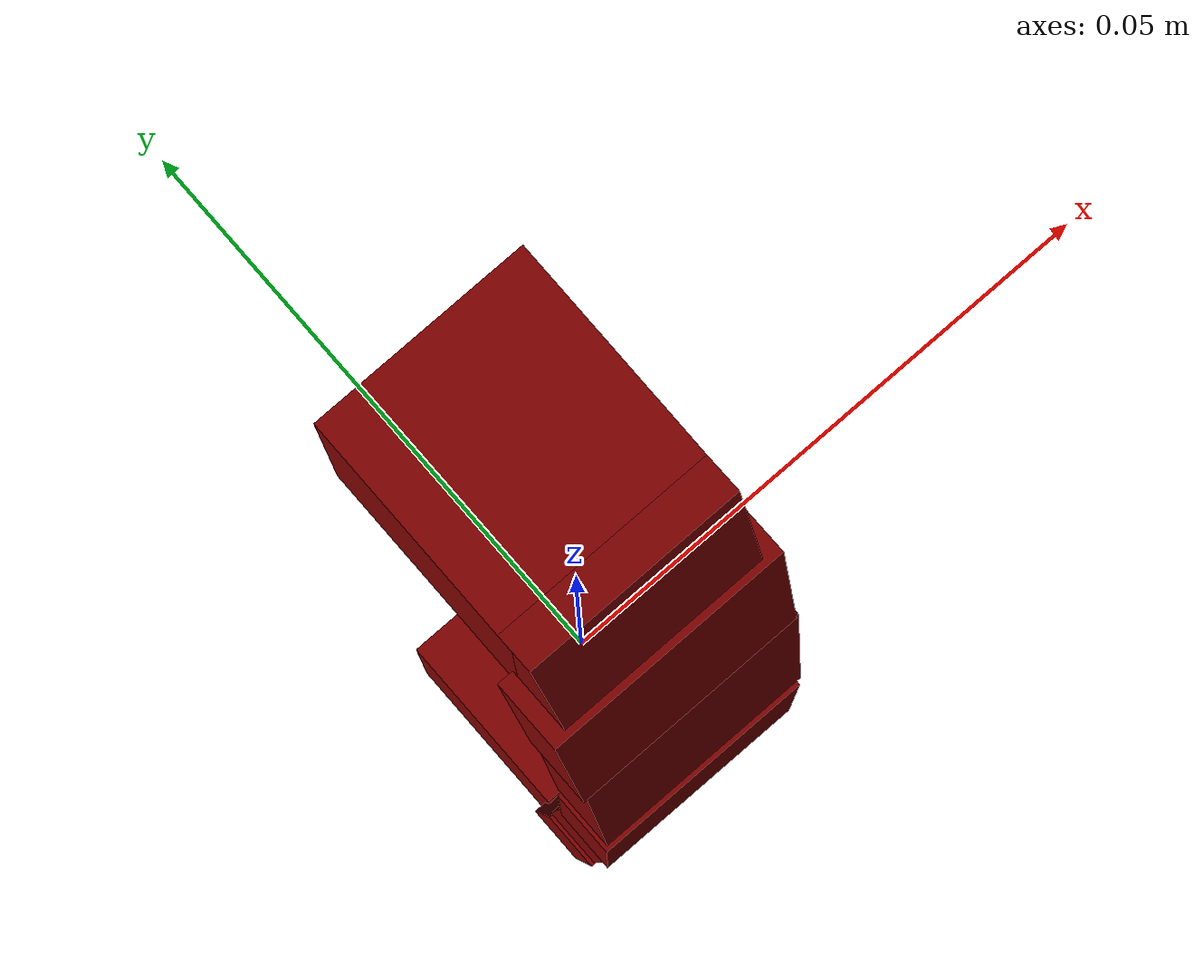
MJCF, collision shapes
<?xml version='1.0' encoding='UTF-8'?>
<mujoco model="model">
  <option timestep="0.002" gravity="0.0 0.0 -9.81"/>
  <compiler angle="radian"/>
  <asset>
    <mesh file="visuals/CabinetHandle031.obj" name="CabinetHandle031_vis"/>
    <texture file="visuals/T_BC001.png" name="tex" type="2d"/>
    <material name="mat" rgba="1 1 1 1.0" texture="tex" shininess="-0.9999998807907104" specular="0.3103448502657381"/>
  </asset>
  <default>
    <default class="visual">
      <geom conaffinity="0" contype="0" group="1" type="mesh"/>
    </default>
    <default class="collision">
      <geom group="0" rgba="0.5 0 0 0.5" density="1.0" solref="0.004 1" solimp="0.998 0.998 0.001"/>
    </default>
    <default class="spawn">
      <geom group="0" rgba="1 1 1 0.5" contype="0" conaffinity="0"/>
      <site group="0" rgba="1 1 1 0.5"/>
    </default>
    <default class="region">
      <geom group="1" conaffinity="0" contype="0" rgba="0 1 0 0" mass="0"/>
    </default>
  </default>
  <worldbody>
    <body>
      <body name="object">
        <geom mesh="CabinetHandle031_vis" type="mesh" solimp="0.998 0.998 0.001" solref="0.001 1" friction="0.95 0.3 0.1" class="visual" material="mat"/>
        <geom type="box" pos="0.0 0.004903578665107489 -0.07580382376909256" size="0.008262159302830696 0.009052232839167118 0.012539614923298359" quat="1.0 0.0 0.0 0.0" class="collision"/>
        <geom type="box" pos="3.487616777420044e-05 0.004903124179691076 0.0759149044752121" size="0.008262149058282375 0.009052222594618797 0.012587164528667927" quat="1.0 0.0 0.0 0.0" class="collision"/>
        <geom type="box" pos="3.487616777420044e-05 -0.011143438518047333 7.753819227218628e-05" size="0.009538620710372925 0.002793191699311137 0.012539575807750225" quat="1.0 0.0 0.0 0.0" class="collision"/>
        <geom type="box" pos="0.0003676544292829931 -0.00979655608534813 0.029630199074745178" size="0.009538610465824604 0.0027931882068514824 0.016835320740938187" quat="0.999549925327301 -0.029998932033777237 -6.661104733925689e-18 -3.624156421077591e-25" class="collision"/>
        <geom type="box" pos="3.487616777420044e-05 -0.00768975680693984 0.058980364352464676" size="0.009538610465824604 0.0027931882068514824 0.012150431051850319" quat="0.9986615777015686 -0.051720865070819855 -1.148433077922492e-17 6.424547923366052e-26" class="collision"/>
        <geom type="box" pos="3.487616777420044e-05 -0.005011770408600569 0.07654297351837158" size="0.008262129500508308 0.0027931882068514824 0.012150431051850319" quat="0.9967654943466187 -0.08036501705646515 -1.7844620116457432e-17 4.436880615200571e-25" class="collision"/>
        <geom type="box" pos="0.0003676544292829931 -0.00979655608534813 -0.028816256672143936" size="0.009538610465824604 0.0027931882068514824 0.016835320740938187" quat="0.999549925327301 0.02999892830848694 6.661105147515995e-18 -2.7249506385103956e-25" class="collision"/>
        <geom type="box" pos="3.487616777420044e-05 -0.007689756341278553 -0.058166421949863434" size="0.009538610465824604 0.0027931882068514824 0.012150431051850319" quat="0.9986615777015686 0.05172086879611015 1.148433077922492e-17 2.1463010115998454e-26" class="collision"/>
        <geom type="box" pos="3.487616777420044e-05 -0.005011770874261856 -0.07572902739048004" size="0.008262129500508308 0.0027931882068514824 0.012150431051850319" quat="0.9967654943466187 0.08036503940820694 1.7844621770818657e-17 -7.065019038674817e-25" class="collision"/>
        <geom class="region" name="reg_main" type="box" pos="0.0 0.0 0.0" size="0.01039999707043171 0.01437760128080845 0.08929200267791748"/>
      </body>
    </body>
  </worldbody>
  <actuator/>
</mujoco>
